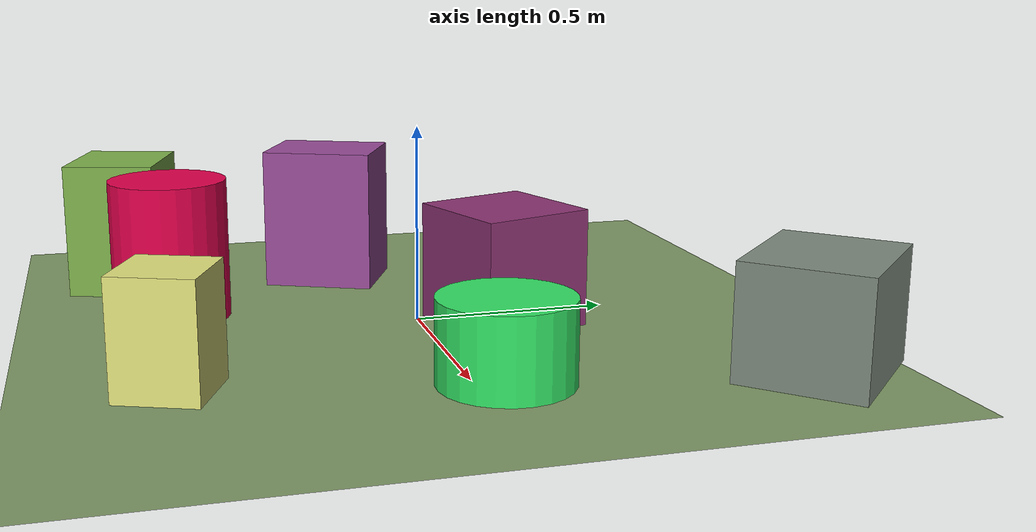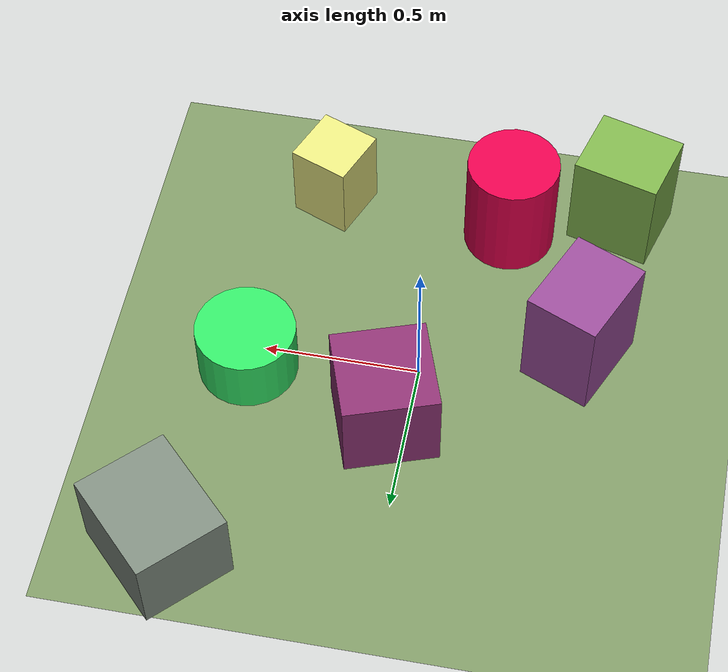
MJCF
<mujoco>
   <asset>
<texture type="skybox" builtin="gradient" rgb1="1.0 0.7 1.0" rgb2="1.0 0.7 0.5" width="256" height="256"/>
<texture name="flat_0" builtin="flat" rgb1="0.2 0.9 0.4" rgb2="0.2 0.9 0.4"  width="200" height="200"/>
<texture name="checker_1" builtin="checker" rgb1="0.2 0.1 0.5" rgb2="0.8 1.0 0.5" width="200" height="200"/>
<texture name="flat_2" builtin="flat" rgb1="0.5 0.7 0.3" rgb2="0.5 0.7 0.3"  width="200" height="200"/>
<texture name="flat_3" builtin="flat" rgb1="0.9 0.0 0.3" rgb2="0.9 0.0 0.3"  width="200" height="200"/>
<texture name="gradient_4" builtin="gradient" rgb1="0.7 0.1 0.5" rgb2="0.4 0.3 0.4" width="200" height="200"/>
<texture name="gradient_5" builtin="gradient" rgb1="0.3 0.0 0.3" rgb2="0.9 0.6 0.9" width="200" height="200"/>
<texture name="flat_6" builtin="flat" rgb1="0.9 0.9 0.5" rgb2="0.9 0.9 0.5"  width="200" height="200"/><material name="flat_0_mat" reflectance="0" texture="flat_0" texuniform="true"/>
<material name="checker_1_mat" reflectance="0" texrepeat="3 3" texture="checker_1" texuniform="false" />
<material name="flat_2_mat" reflectance="0" texture="flat_2" texuniform="true"/>
<material name="flat_3_mat" reflectance="0" texture="flat_3" texuniform="true"/>
<material name="gradient_4_mat" reflectance="0" texture="gradient_4" texuniform="true"/>
<material name="gradient_5_mat" reflectance="0" texture="gradient_5" texuniform="true"/>
<material name="flat_6_mat" reflectance="0" texture="flat_6" texuniform="true"/>
   </asset>

   <worldbody>
      <light diffuse=".9 .9 .9" pos="0 0 3" dir="0 0 -1"/>
     <geom type="plane" size="1 1 0.1" rgba="0.5 0.6 0.4 1"/>
<geom type="cylinder" pos="0.54 0.07 0.1" size="0.16 0.1 0.1" material="flat_0_mat" euler="0 0 20" />
<geom type="box" pos="0.65 0.78 0.14" size="0.15 0.18 0.14" material="checker_1_mat" euler="0 0 45" />
<geom type="box" pos="-0.56 -0.72 0.18" size="0.12 0.14 0.18" material="flat_2_mat" euler="0 0 74" />
<geom type="cylinder" pos="-0.2 -0.61 0.18" size="0.15 0.18 0.18" material="flat_3_mat" euler="0 0 20" />
<geom type="box" pos="0.07 0.21 0.15" size="0.15 0.15 0.15" material="gradient_4_mat" euler="0 0 19" />
<geom type="box" pos="-0.49 -0.15 0.19" size="0.15 0.12 0.19" material="gradient_5_mat" euler="0 0 66" />
<geom type="box" pos="0.4 -0.65 0.14" size="0.1 0.1 0.14" material="flat_6_mat" euler="0 0 68" /><camera euler="60 0 180" fovy="60" name="camera1" pos="-0.2 -1.5 1"></camera>   </worldbody>
</mujoco>
